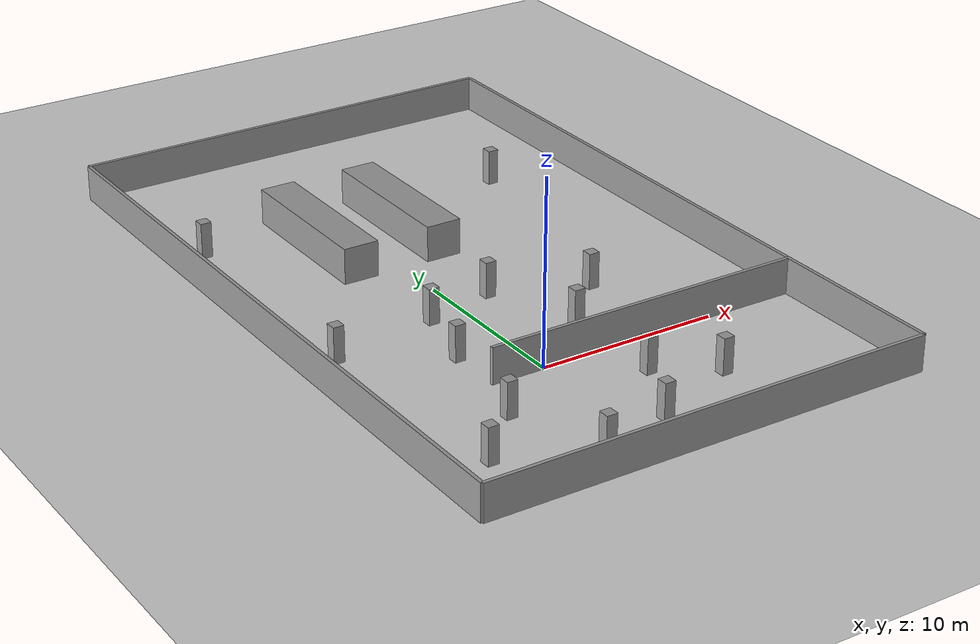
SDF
<?xml version="1.0"?>
<sdf version="1.6">
  <world name="default">
    <include>
      <uri>model://ground_plane</uri>
    </include>
    <include>
      <uri>model://sun</uri>
    </include>
    <physics type="ode">
      <real_time_update_rate>1000.0</real_time_update_rate>
      <max_step_size>0.001</max_step_size>
    </physics>

    <model name='wall_0'>
      <pose>2.5 30.0 1.0 0 0 0</pose>
      <link name='link'>
        <collision name='collision'>
          <geometry>
            <box>
              <size>25.0 0.2 2.0</size>
            </box>
          </geometry>
        </collision>
        <visual name='visual'>
          <geometry>
            <box>
              <size>25.0 0.2 2.0</size>
            </box>
          </geometry>
          <material>
            <script>
              <uri>file://media/materials/scripts/gazebo.material</uri>
              <name>Gazebo/Grey</name>
            </script>
          </material>
        </visual>
      </link>
      <static>1</static>
    </model>

    <model name='wall_1'>
      <pose>2.5 -10.0 1.0 0 0 0</pose>
      <link name='link'>
        <collision name='collision'>
          <geometry>
            <box>
              <size>25.0 0.2 2.0</size>
            </box>
          </geometry>
        </collision>
        <visual name='visual'>
          <geometry>
            <box>
              <size>25.0 0.2 2.0</size>
            </box>
          </geometry>
          <material>
            <script>
              <uri>file://media/materials/scripts/gazebo.material</uri>
              <name>Gazebo/Grey</name>
            </script>
          </material>
        </visual>
      </link>
      <static>1</static>
    </model>

    <model name='wall_2'>
      <pose>-10.0 10.0 1.0 0 0 0</pose>
      <link name='link'>
        <collision name='collision'>
          <geometry>
            <box>
              <size>0.2 40.0 2.0</size>
            </box>
          </geometry>
        </collision>
        <visual name='visual'>
          <geometry>
            <box>
              <size>0.2 40.0 2.0</size>
            </box>
          </geometry>
          <material>
            <script>
              <uri>file://media/materials/scripts/gazebo.material</uri>
              <name>Gazebo/Grey</name>
            </script>
          </material>
        </visual>
      </link>
      <static>1</static>
    </model>

    <model name='wall_3'>
      <pose>15.0 10.0 1.0 0 0 0</pose>
      <link name='link'>
        <collision name='collision'>
          <geometry>
            <box>
              <size>0.2 40.0 2.0</size>
            </box>
          </geometry>
        </collision>
        <visual name='visual'>
          <geometry>
            <box>
              <size>0.2 40.0 2.0</size>
            </box>
          </geometry>
          <material>
            <script>
              <uri>file://media/materials/scripts/gazebo.material</uri>
              <name>Gazebo/Grey</name>
            </script>
          </material>
        </visual>
      </link>
      <static>1</static>
    </model>

    <model name='wall_4'>
      <pose>-2.5 17.5 1.0 0 0 0</pose>
      <link name='link'>
        <collision name='collision'>
          <geometry>
            <box>
              <size>2.0 9.0 2.0</size>
            </box>
          </geometry>
        </collision>
        <visual name='visual'>
          <geometry>
            <box>
              <size>2.0 9.0 2.0</size>
            </box>
          </geometry>
          <material>
            <script>
              <uri>file://media/materials/scripts/gazebo.material</uri>
              <name>Gazebo/Grey</name>
            </script>
          </material>
        </visual>
      </link>
      <static>1</static>
    </model>

    <model name='wall_5'>
      <pose>2.5 17.5 1.0 0 0 0</pose>
      <link name='link'>
        <collision name='collision'>
          <geometry>
            <box>
              <size>2.0 9.0 2.0</size>
            </box>
          </geometry>
        </collision>
        <visual name='visual'>
          <geometry>
            <box>
              <size>2.0 9.0 2.0</size>
            </box>
          </geometry>
          <material>
            <script>
              <uri>file://media/materials/scripts/gazebo.material</uri>
              <name>Gazebo/Grey</name>
            </script>
          </material>
        </visual>
      </link>
      <static>1</static>
    </model>

    <model name='wall_6'>
      <pose>6.0 0.0 1.0 0 0 0</pose>
      <link name='link'>
        <collision name='collision'>
          <geometry>
            <box>
              <size>18.0 0.2 2.0</size>
            </box>
          </geometry>
        </collision>
        <visual name='visual'>
          <geometry>
            <box>
              <size>18.0 0.2 2.0</size>
            </box>
          </geometry>
          <material>
            <script>
              <uri>file://media/materials/scripts/gazebo.material</uri>
              <name>Gazebo/Grey</name>
            </script>
          </material>
        </visual>
      </link>
      <static>1</static>
    </model>

    <model name='wall_7'>
      <pose>4.0 3.0 1.0 0 0 0</pose>
      <link name='link'>
        <collision name='collision'>
          <geometry>
            <box>
              <size>0.6 0.6 2.0</size>
            </box>
          </geometry>
        </collision>
        <visual name='visual'>
          <geometry>
            <box>
              <size>0.6 0.6 2.0</size>
            </box>
          </geometry>
          <material>
            <script>
              <uri>file://media/materials/scripts/gazebo.material</uri>
              <name>Gazebo/Grey</name>
            </script>
          </material>
        </visual>
      </link>
      <static>1</static>
    </model>

    <model name='wall_8'>
      <pose>7.0 6.0 1.0 0 0 0</pose>
      <link name='link'>
        <collision name='collision'>
          <geometry>
            <box>
              <size>0.6 0.6 2.0</size>
            </box>
          </geometry>
        </collision>
        <visual name='visual'>
          <geometry>
            <box>
              <size>0.6 0.6 2.0</size>
            </box>
          </geometry>
          <material>
            <script>
              <uri>file://media/materials/scripts/gazebo.material</uri>
              <name>Gazebo/Grey</name>
            </script>
          </material>
        </visual>
      </link>
      <static>1</static>
    </model>

    <model name='wall_9'>
      <pose>2.0 8.0 1.0 0 0 0</pose>
      <link name='link'>
        <collision name='collision'>
          <geometry>
            <box>
              <size>0.6 0.6 2.0</size>
            </box>
          </geometry>
        </collision>
        <visual name='visual'>
          <geometry>
            <box>
              <size>0.6 0.6 2.0</size>
            </box>
          </geometry>
          <material>
            <script>
              <uri>file://media/materials/scripts/gazebo.material</uri>
              <name>Gazebo/Grey</name>
            </script>
          </material>
        </visual>
      </link>
      <static>1</static>
    </model>

    <model name='wall_10'>
      <pose>-3.0 3.0 1.0 0 0 0</pose>
      <link name='link'>
        <collision name='collision'>
          <geometry>
            <box>
              <size>0.6 0.6 2.0</size>
            </box>
          </geometry>
        </collision>
        <visual name='visual'>
          <geometry>
            <box>
              <size>0.6 0.6 2.0</size>
            </box>
          </geometry>
          <material>
            <script>
              <uri>file://media/materials/scripts/gazebo.material</uri>
              <name>Gazebo/Grey</name>
            </script>
          </material>
        </visual>
      </link>
      <static>1</static>
    </model>

    <model name='wall_11'>
      <pose>-8.0 6.0 1.0 0 0 0</pose>
      <link name='link'>
        <collision name='collision'>
          <geometry>
            <box>
              <size>0.6 0.6 2.0</size>
            </box>
          </geometry>
        </collision>
        <visual name='visual'>
          <geometry>
            <box>
              <size>0.6 0.6 2.0</size>
            </box>
          </geometry>
          <material>
            <script>
              <uri>file://media/materials/scripts/gazebo.material</uri>
              <name>Gazebo/Grey</name>
            </script>
          </material>
        </visual>
      </link>
      <static>1</static>
    </model>

    <model name='wall_12'>
      <pose>-2.0 7.0 1.0 0 0 0</pose>
      <link name='link'>
        <collision name='collision'>
          <geometry>
            <box>
              <size>0.6 0.6 2.0</size>
            </box>
          </geometry>
        </collision>
        <visual name='visual'>
          <geometry>
            <box>
              <size>0.6 0.6 2.0</size>
            </box>
          </geometry>
          <material>
            <script>
              <uri>file://media/materials/scripts/gazebo.material</uri>
              <name>Gazebo/Grey</name>
            </script>
          </material>
        </visual>
      </link>
      <static>1</static>
    </model>

    <model name='wall_13'>
      <pose>-4.0 -3.0 1.0 0 0 0</pose>
      <link name='link'>
        <collision name='collision'>
          <geometry>
            <box>
              <size>0.6 0.6 2.0</size>
            </box>
          </geometry>
        </collision>
        <visual name='visual'>
          <geometry>
            <box>
              <size>0.6 0.6 2.0</size>
            </box>
          </geometry>
          <material>
            <script>
              <uri>file://media/materials/scripts/gazebo.material</uri>
              <name>Gazebo/Grey</name>
            </script>
          </material>
        </visual>
      </link>
      <static>1</static>
    </model>

    <model name='wall_14'>
      <pose>-7.0 -6.0 1.0 0 0 0</pose>
      <link name='link'>
        <collision name='collision'>
          <geometry>
            <box>
              <size>0.6 0.6 2.0</size>
            </box>
          </geometry>
        </collision>
        <visual name='visual'>
          <geometry>
            <box>
              <size>0.6 0.6 2.0</size>
            </box>
          </geometry>
          <material>
            <script>
              <uri>file://media/materials/scripts/gazebo.material</uri>
              <name>Gazebo/Grey</name>
            </script>
          </material>
        </visual>
      </link>
      <static>1</static>
    </model>

    <model name='wall_15'>
      <pose>-2.0 -8.0 1.0 0 0 0</pose>
      <link name='link'>
        <collision name='collision'>
          <geometry>
            <box>
              <size>0.6 0.6 2.0</size>
            </box>
          </geometry>
        </collision>
        <visual name='visual'>
          <geometry>
            <box>
              <size>0.6 0.6 2.0</size>
            </box>
          </geometry>
          <material>
            <script>
              <uri>file://media/materials/scripts/gazebo.material</uri>
              <name>Gazebo/Grey</name>
            </script>
          </material>
        </visual>
      </link>
      <static>1</static>
    </model>

    <model name='wall_16'>
      <pose>4.0 -3.0 1.0 0 0 0</pose>
      <link name='link'>
        <collision name='collision'>
          <geometry>
            <box>
              <size>0.6 0.6 2.0</size>
            </box>
          </geometry>
        </collision>
        <visual name='visual'>
          <geometry>
            <box>
              <size>0.6 0.6 2.0</size>
            </box>
          </geometry>
          <material>
            <script>
              <uri>file://media/materials/scripts/gazebo.material</uri>
              <name>Gazebo/Grey</name>
            </script>
          </material>
        </visual>
      </link>
      <static>1</static>
    </model>

    <model name='wall_17'>
      <pose>7.0 -5.0 1.0 0 0 0</pose>
      <link name='link'>
        <collision name='collision'>
          <geometry>
            <box>
              <size>0.6 0.6 2.0</size>
            </box>
          </geometry>
        </collision>
        <visual name='visual'>
          <geometry>
            <box>
              <size>0.6 0.6 2.0</size>
            </box>
          </geometry>
          <material>
            <script>
              <uri>file://media/materials/scripts/gazebo.material</uri>
              <name>Gazebo/Grey</name>
            </script>
          </material>
        </visual>
      </link>
      <static>1</static>
    </model>

    <model name='wall_18'>
      <pose>2.0 -7.0 1.0 0 0 0</pose>
      <link name='link'>
        <collision name='collision'>
          <geometry>
            <box>
              <size>0.6 0.6 2.0</size>
            </box>
          </geometry>
        </collision>
        <visual name='visual'>
          <geometry>
            <box>
              <size>0.6 0.6 2.0</size>
            </box>
          </geometry>
          <material>
            <script>
              <uri>file://media/materials/scripts/gazebo.material</uri>
              <name>Gazebo/Grey</name>
            </script>
          </material>
        </visual>
      </link>
      <static>1</static>
    </model>

    <model name='wall_19'>
      <pose>10.0 20.0 1.0 0 0 0</pose>
      <link name='link'>
        <collision name='collision'>
          <geometry>
            <box>
              <size>0.6 0.6 2.0</size>
            </box>
          </geometry>
        </collision>
        <visual name='visual'>
          <geometry>
            <box>
              <size>0.6 0.6 2.0</size>
            </box>
          </geometry>
          <material>
            <script>
              <uri>file://media/materials/scripts/gazebo.material</uri>
              <name>Gazebo/Grey</name>
            </script>
          </material>
        </visual>
      </link>
      <static>1</static>
    </model>

    <model name='wall_20'>
      <pose>-8.0 20.0 1.0 0 0 0</pose>
      <link name='link'>
        <collision name='collision'>
          <geometry>
            <box>
              <size>0.6 0.6 2.0</size>
            </box>
          </geometry>
        </collision>
        <visual name='visual'>
          <geometry>
            <box>
              <size>0.6 0.6 2.0</size>
            </box>
          </geometry>
          <material>
            <script>
              <uri>file://media/materials/scripts/gazebo.material</uri>
              <name>Gazebo/Grey</name>
            </script>
          </material>
        </visual>
      </link>
      <static>1</static>
    </model>

  </world>
</sdf>
